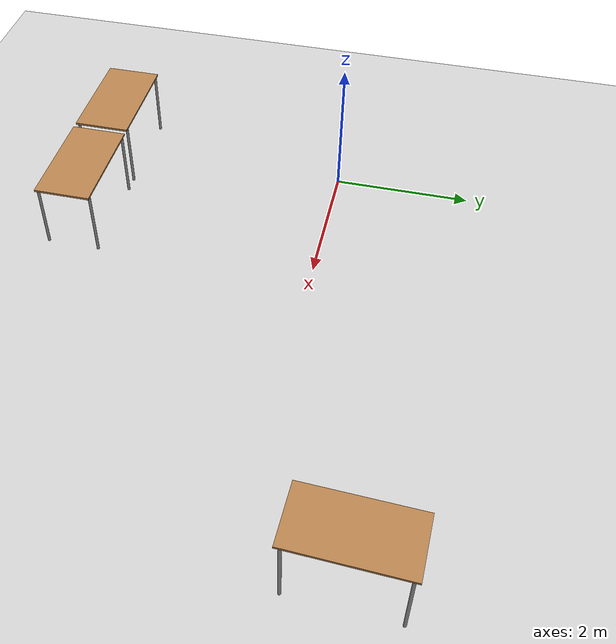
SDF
<sdf version="1.4">
 <world name="default">
  <light name="sun" type="directional">
   <pose>0 0 10 0 -0 0</pose>
   <diffuse>0.8 0.8 0.8 1</diffuse>
   <specular>0.2 0.2 0.2 1</specular>
   <attenuation>
    <range>1000</range>
    <constant>0.9</constant>
    <linear>0.01</linear>
    <quadratic>0.001</quadratic>
   </attenuation>
   <direction>-0.5 0.1 -0.9</direction>
  </light>
  <model name="ground_plane">
   <static>1</static>
   <link name="link">
    <collision name="collision">
     <geometry><plane><normal>0 0 1</normal><size>100 100</size></plane></geometry>
     <surface><friction><ode><mu>100</mu><mu2>50</mu2></ode></friction></surface>
    </collision>
    <visual name="visual">
     <cast_shadows>0</cast_shadows>
     <geometry><plane><normal>0 0 1</normal><size>100 100</size></plane></geometry>
     <material>
      <script><uri>file://media/materials/scripts/gazebo.material</uri><name>Gazebo/Grey</name></script>
     </material>
    </visual>
    <velocity_decay><linear>0</linear><angular>0</angular></velocity_decay>
   </link>
  </model>
  <physics type="ode">
   <max_step_size>0.001</max_step_size>
   <real_time_factor>1</real_time_factor>
   <real_time_update_rate>1000</real_time_update_rate>
   <gravity>0 0 -9.8</gravity>
  </physics>
  <scene><ambient>0.4 0.4 0.4 1</ambient><background>0.7 0.7 0.7 1</background><shadows>1</shadows></scene>
  <spherical_coordinates>
   <surface_model>EARTH_WGS84</surface_model>
   <latitude_deg>0</latitude_deg>
   <longitude_deg>0</longitude_deg>
   <elevation>0</elevation>
   <heading_deg>0</heading_deg>
  </spherical_coordinates>
  <model name="table">
   <static>1</static>
   <link name="link">
    <collision name="surface">
     <pose>0 0 1 0 -0 0</pose>
     <geometry><box><size>1.5 0.8 0.03</size></box></geometry>
     <surface><friction><ode><mu>0.6</mu><mu2>0.6</mu2></ode></friction></surface>
    </collision>
    <visual name="visual1">
     <pose>0 0 1 0 -0 0</pose>
     <geometry><box><size>1.5 0.8 0.03</size></box></geometry>
     <material>
      <script><uri>file://media/materials/scripts/gazebo.material</uri><name>Gazebo/Wood</name></script>
     </material>
    </visual>
    <collision name="front_left_leg">
     <pose>0.68 0.38 0.5 0 -0 0</pose>
     <geometry><cylinder><radius>0.02</radius><length>1</length></cylinder></geometry>
    </collision>
    <visual name="front_left_leg">
     <pose>0.68 0.38 0.5 0 -0 0</pose>
     <geometry><cylinder><radius>0.02</radius><length>1</length></cylinder></geometry>
     <material>
      <script><uri>file://media/materials/scripts/gazebo.material</uri><name>Gazebo/Grey</name></script>
     </material>
    </visual>
    <collision name="front_right_leg">
     <pose>0.68 -0.38 0.5 0 -0 0</pose>
     <geometry><cylinder><radius>0.02</radius><length>1</length></cylinder></geometry>
    </collision>
    <visual name="front_right_leg">
     <pose>0.68 -0.38 0.5 0 -0 0</pose>
     <geometry><cylinder><radius>0.02</radius><length>1</length></cylinder></geometry>
     <material>
      <script><uri>file://media/materials/scripts/gazebo.material</uri><name>Gazebo/Grey</name></script>
     </material>
    </visual>
    <collision name="back_right_leg">
     <pose>-0.68 -0.38 0.5 0 -0 0</pose>
     <geometry><cylinder><radius>0.02</radius><length>1</length></cylinder></geometry>
    </collision>
    <visual name="back_right_leg">
     <pose>-0.68 -0.38 0.5 0 -0 0</pose>
     <geometry><cylinder><radius>0.02</radius><length>1</length></cylinder></geometry>
     <material>
      <script><uri>file://media/materials/scripts/gazebo.material</uri><name>Gazebo/Grey</name></script>
     </material>
    </visual>
    <collision name="back_left_leg">
     <pose>-0.68 0.38 0.5 0 -0 0</pose>
     <geometry><cylinder><radius>0.02</radius><length>1</length></cylinder></geometry>
    </collision>
    <visual name="back_left_leg">
     <pose>-0.68 0.38 0.5 0 -0 0</pose>
     <geometry><cylinder><radius>0.02</radius><length>1</length></cylinder></geometry>
     <material>
      <script><uri>file://media/materials/scripts/gazebo.material</uri><name>Gazebo/Grey</name></script>
     </material>
    </visual>
    <velocity_decay><linear>0</linear><angular>0</angular></velocity_decay>
   </link>
   <pose>0 -3.51728 0 0 -0 0</pose>
  </model>
  <model name="table_0">
   <static>1</static>
   <link name="link">
    <collision name="surface">
     <pose>0 0 1 0 -0 0</pose>
     <geometry><box><size>1.5 0.8 0.03</size></box></geometry>
     <surface><friction><ode><mu>0.6</mu><mu2>0.6</mu2></ode></friction></surface>
    </collision>
    <visual name="visual1">
     <pose>0 0 1 0 -0 0</pose>
     <geometry><box><size>1.5 0.8 0.03</size></box></geometry>
     <material>
      <script><uri>file://media/materials/scripts/gazebo.material</uri><name>Gazebo/Wood</name></script>
     </material>
    </visual>
    <collision name="front_left_leg">
     <pose>0.68 0.38 0.5 0 -0 0</pose>
     <geometry><cylinder><radius>0.02</radius><length>1</length></cylinder></geometry>
    </collision>
    <visual name="front_left_leg">
     <pose>0.68 0.38 0.5 0 -0 0</pose>
     <geometry><cylinder><radius>0.02</radius><length>1</length></cylinder></geometry>
     <material>
      <script><uri>file://media/materials/scripts/gazebo.material</uri><name>Gazebo/Grey</name></script>
     </material>
    </visual>
    <collision name="front_right_leg">
     <pose>0.68 -0.38 0.5 0 -0 0</pose>
     <geometry><cylinder><radius>0.02</radius><length>1</length></cylinder></geometry>
    </collision>
    <visual name="front_right_leg">
     <pose>0.68 -0.38 0.5 0 -0 0</pose>
     <geometry><cylinder><radius>0.02</radius><length>1</length></cylinder></geometry>
     <material>
      <script><uri>file://media/materials/scripts/gazebo.material</uri><name>Gazebo/Grey</name></script>
     </material>
    </visual>
    <collision name="back_right_leg">
     <pose>-0.68 -0.38 0.5 0 -0 0</pose>
     <geometry><cylinder><radius>0.02</radius><length>1</length></cylinder></geometry>
    </collision>
    <visual name="back_right_leg">
     <pose>-0.68 -0.38 0.5 0 -0 0</pose>
     <geometry><cylinder><radius>0.02</radius><length>1</length></cylinder></geometry>
     <material>
      <script><uri>file://media/materials/scripts/gazebo.material</uri><name>Gazebo/Grey</name></script>
     </material>
    </visual>
    <collision name="back_left_leg">
     <pose>-0.68 0.38 0.5 0 -0 0</pose>
     <geometry><cylinder><radius>0.02</radius><length>1</length></cylinder></geometry>
    </collision>
    <visual name="back_left_leg">
     <pose>-0.68 0.38 0.5 0 -0 0</pose>
     <geometry><cylinder><radius>0.02</radius><length>1</length></cylinder></geometry>
     <material>
      <script><uri>file://media/materials/scripts/gazebo.material</uri><name>Gazebo/Grey</name></script>
     </material>
    </visual>
    <velocity_decay><linear>0</linear><angular>0</angular></velocity_decay>
   </link>
   <pose>1.5932 -3.51811 0 0 -0 0</pose>
  </model>
  <model name="table_1">
   <static>1</static>
   <link name="link">
    <collision name="surface">
     <pose>0 0 1 0 -0 0</pose>
     <geometry><box><size>1.5 0.8 0.03</size></box></geometry>
     <surface><friction><ode><mu>0.6</mu><mu2>0.6</mu2></ode></friction></surface>
    </collision>
    <visual name="visual1">
     <pose>0 0 1 0 -0 0</pose>
     <geometry><box><size>1.5 0.8 0.03</size></box></geometry>
     <material>
      <script><uri>file://media/materials/scripts/gazebo.material</uri><name>Gazebo/Wood</name></script>
     </material>
    </visual>
    <collision name="front_left_leg">
     <pose>0.68 0.38 0.5 0 -0 0</pose>
     <geometry><cylinder><radius>0.02</radius><length>1</length></cylinder></geometry>
    </collision>
    <visual name="front_left_leg">
     <pose>0.68 0.38 0.5 0 -0 0</pose>
     <geometry><cylinder><radius>0.02</radius><length>1</length></cylinder></geometry>
     <material>
      <script><uri>file://media/materials/scripts/gazebo.material</uri><name>Gazebo/Grey</name></script>
     </material>
    </visual>
    <collision name="front_right_leg">
     <pose>0.68 -0.38 0.5 0 -0 0</pose>
     <geometry><cylinder><radius>0.02</radius><length>1</length></cylinder></geometry>
    </collision>
    <visual name="front_right_leg">
     <pose>0.68 -0.38 0.5 0 -0 0</pose>
     <geometry><cylinder><radius>0.02</radius><length>1</length></cylinder></geometry>
     <material>
      <script><uri>file://media/materials/scripts/gazebo.material</uri><name>Gazebo/Grey</name></script>
     </material>
    </visual>
    <collision name="back_right_leg">
     <pose>-0.68 -0.38 0.5 0 -0 0</pose>
     <geometry><cylinder><radius>0.02</radius><length>1</length></cylinder></geometry>
    </collision>
    <visual name="back_right_leg">
     <pose>-0.68 -0.38 0.5 0 -0 0</pose>
     <geometry><cylinder><radius>0.02</radius><length>1</length></cylinder></geometry>
     <material>
      <script><uri>file://media/materials/scripts/gazebo.material</uri><name>Gazebo/Grey</name></script>
     </material>
    </visual>
    <collision name="back_left_leg">
     <pose>-0.68 0.38 0.5 0 -0 0</pose>
     <geometry><cylinder><radius>0.02</radius><length>1</length></cylinder></geometry>
    </collision>
    <visual name="back_left_leg">
     <pose>-0.68 0.38 0.5 0 -0 0</pose>
     <geometry><cylinder><radius>0.02</radius><length>1</length></cylinder></geometry>
     <material>
      <script><uri>file://media/materials/scripts/gazebo.material</uri><name>Gazebo/Grey</name></script>
     </material>
    </visual>
    <velocity_decay><linear>0</linear><angular>0</angular></velocity_decay>
   </link>
   <pose>6.51919 1.32105 0 0 0 -1.60752</pose>
  </model>
 </world>
</sdf>
